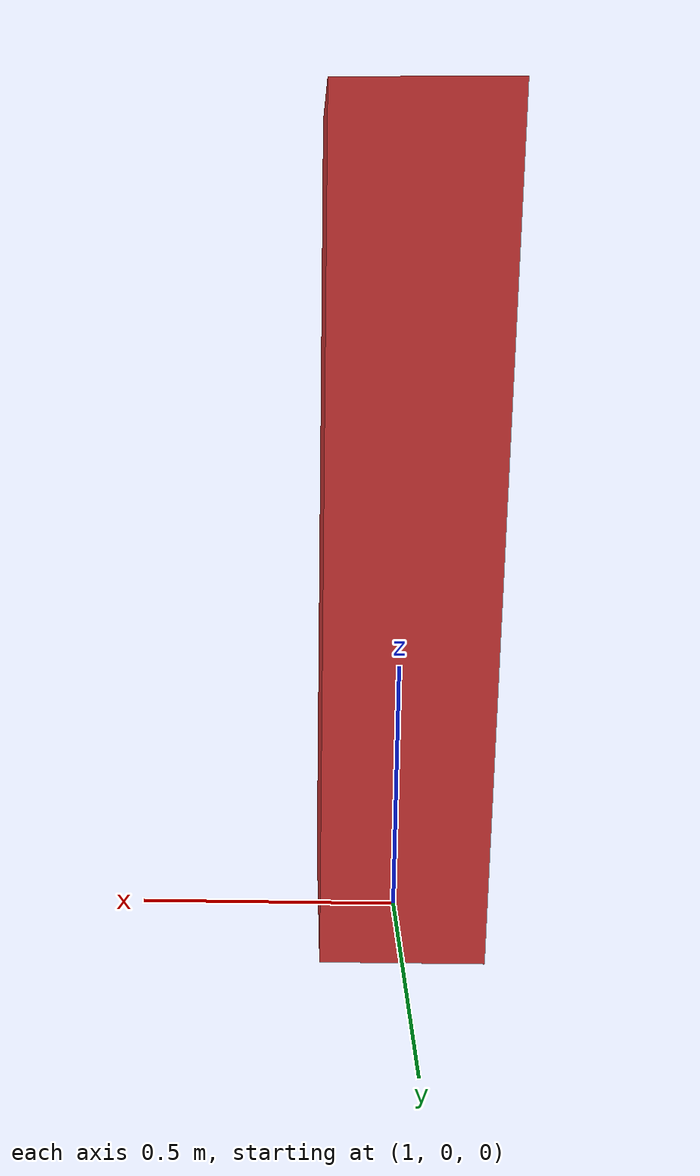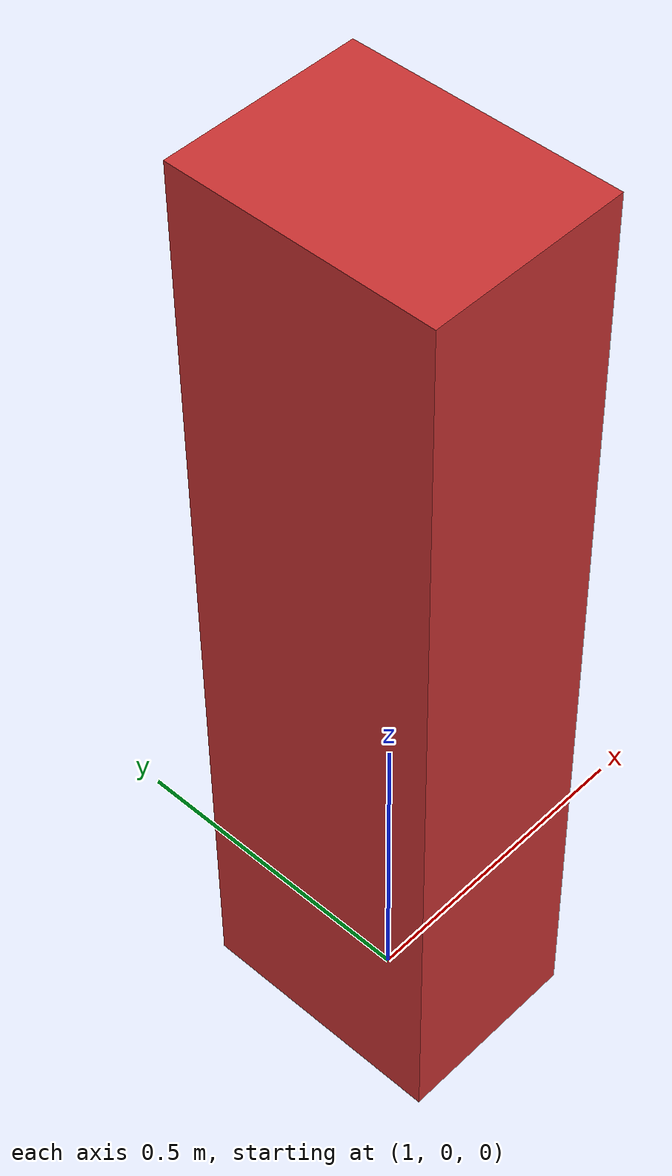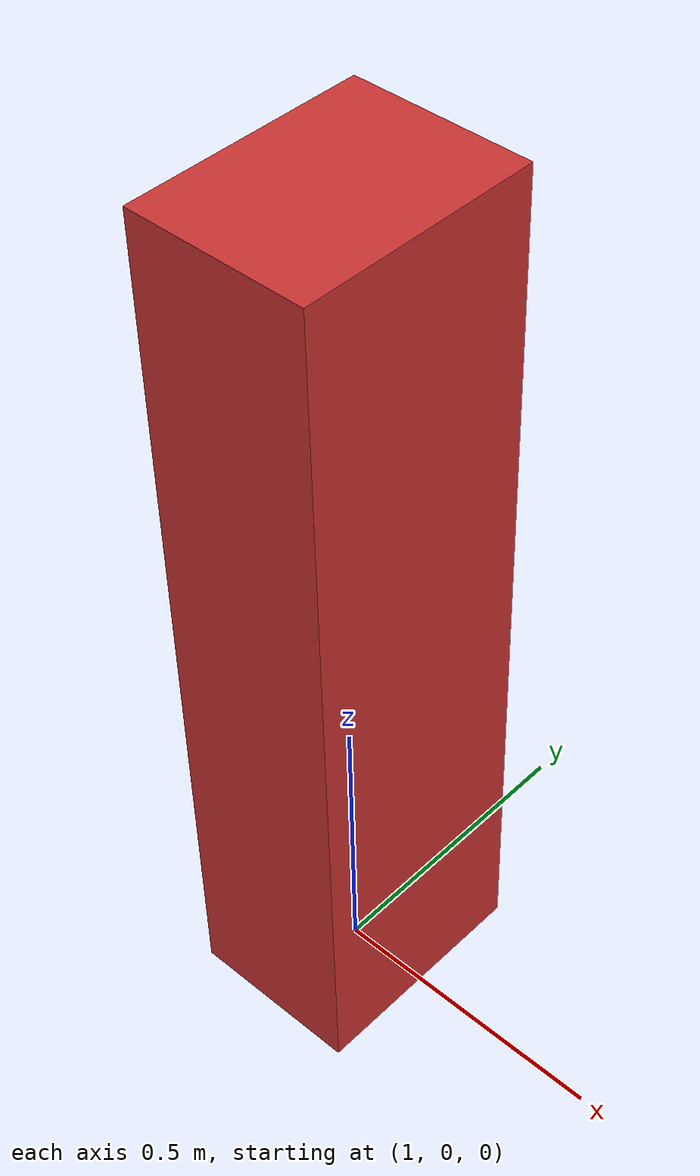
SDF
<?xml version="1.0" ?>
<sdf version="1.6">
  <model name="back_fixed_box">
    <static>true</static>
    <link name="box_link">
      <visual name="visual">
        <geometry>
          <box>
            <size>0.3 0.4 1.5</size>
          </box>
        </geometry>
        <material>
          <diffuse>0.8 0.2 0.2 1.0</diffuse>   <!-- Red -->
          <specular>0.4 0.1 0.1 1.0</specular>
        </material>
      </visual>
      <collision name="collision">
        <geometry>
          <box>
            <size>0.3 0.4 1.5</size>
          </box>
        </geometry>
        <surface>
          <friction>
            <ode>
              <mu>0.8</mu>
              <mu2>0.8</mu2>
            </ode>
          </friction>
        </surface>
<!-- SOFT (compliant) hydroelastic for the back fixed box -->
    <drake:proximity_properties>
      <drake:compliant_hydroelastic/>
      <drake:hydroelastic_modulus>2.0e7</drake:hydroelastic_modulus>
      <drake:hunt_crossley_dissipation>15.0</drake:hunt_crossley_dissipation>
      <drake:mu_static>0.60</drake:mu_static>
      <drake:mu_dynamic>0.55</drake:mu_dynamic>
      <!-- Optional: resolution for soft volume mesh (smaller → finer) -->
    </drake:proximity_properties>
      </collision>
      <!-- Positioned behind the middle fixed box in X-axis direction -->
      <pose>1.0 0.0 0.75 0 0 0</pose>
    </link>
  </model>
</sdf>
